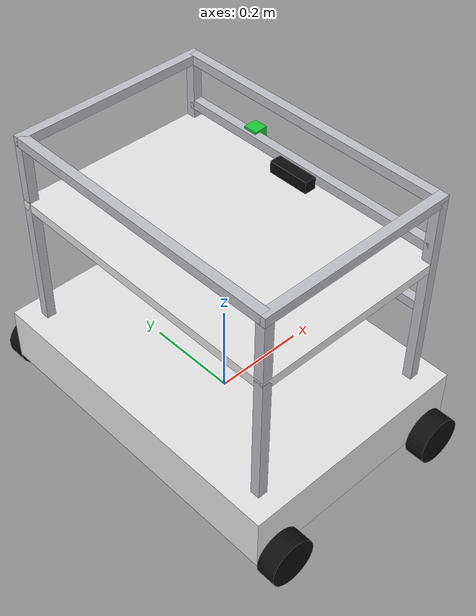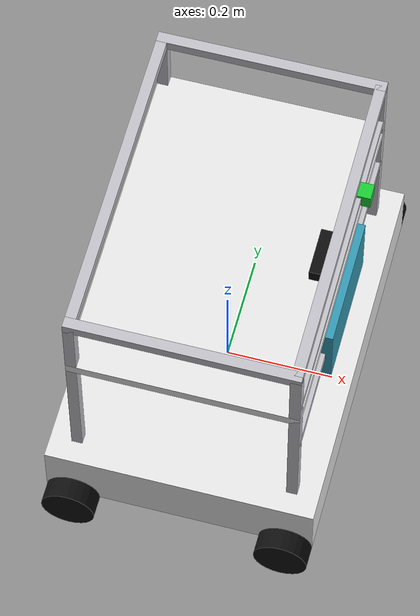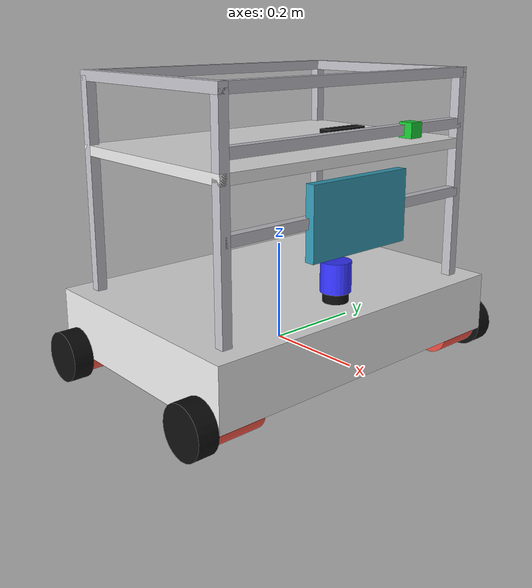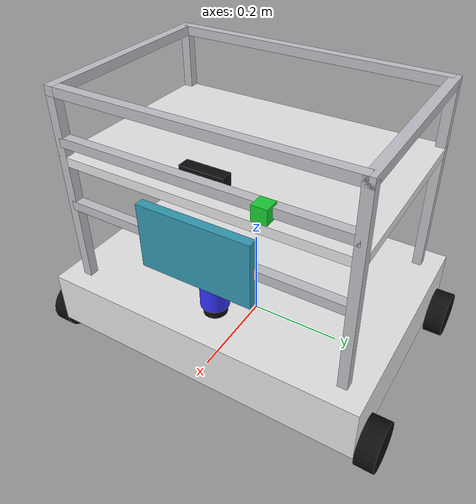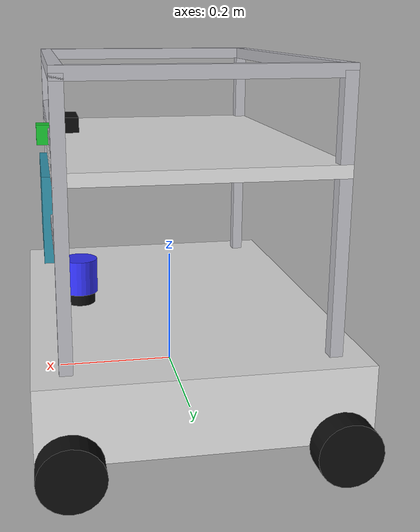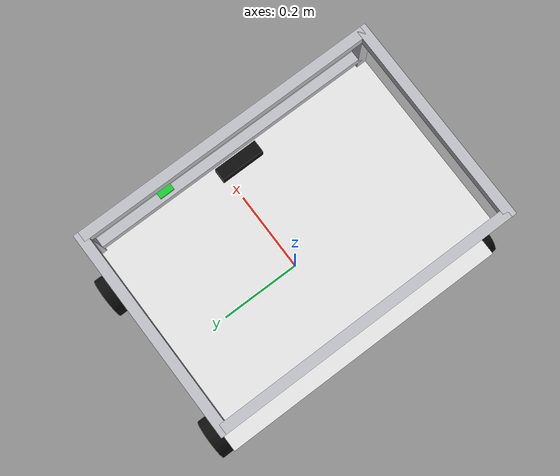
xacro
<?xml version="1.0"?>
<robot name="tribo" xmlns:xacro="http://www.ros.org/wiki/xacro">

    <xacro:include filename="inertial_macros.xacro"/>

    <!--  치수 파라미터 (단위 m)                                        -->
    <!--  주의 - 모두 사진 비율로 추정한 값. 실측 확보 시 여기만 교체.  -->
    <!--  좌표계 - X 전방, Y 좌측, Z 상방                               -->
    <!--  base_link = 바퀴 축 평면(휠 중심 z=0)                         -->

    <!-- 바퀴 -->
    <!-- 100mm 메카넘 공칭 반경. 운동학용 보정 반경(robot_geom.yaml 의 wheel_radius)과 -->
    <!-- 는 성격이 다르다. 여기는 물리 형상이므로 공칭값을 쓴다. -->
    <xacro:property name="wheel_radius" value="0.05"/>
    <xacro:property name="wheel_width"  value="0.04"/>
    <!-- 2026-08-19 실측으로 교체. 기존 0.14/0.25 는 위 주석대로 사진 비율 추정치였고 -->
    <!-- 실측(휠베이스 0.40, 트랙 0.74)과 크게 어긋나 있었다. -->
    <xacro:property name="wheel_x"      value="0.20"/>   <!-- 전후 휠 중심 (휠베이스 0.40 의 절반) -->
    <xacro:property name="wheel_y"      value="0.37"/>   <!-- 좌우 휠 중심 (트랙 0.74 의 절반). 차체 반폭(0.21)보다 16cm 바깥 → 좌우 크게 돌출 -->

    <!--  하단 베이스(구동부 박스)                                       -->
    <!--  전장(X)은 nav2 실측 footprint 그대로. 같은 실측 기하에서       -->
    <!--  유도하며 숫자를 베껴 적지 않는다.                              -->
    <!--    전장 0.50 = 2*(휠베이스/2 + 바퀴반경)  = footprint X 와 동일  -->
    <!--  전폭(Y)은 바퀴 안쪽 면까지만 잡는다. footprint 전폭 0.78 은     -->
    <!--  바퀴 바깥면까지의 값이라 그대로 쓰면 바퀴가 박스에 파묻힌다.    -->
    <!--    전폭 0.70 = 2*(트랙/2 - 바퀴폭/2)                            -->
    <!--  → 바퀴 4개가 박스 밖으로 온전히 드러난다.                      -->
    <!--  로봇 전체 외곽은 여전히 0.50 x 0.78 = nav2 footprint 그대로다. -->
    <xacro:property name="base_x"       value="${2*(wheel_x + wheel_radius)}"/>   <!-- 전장 0.50 -->
    <xacro:property name="base_y"       value="${2*(wheel_y - wheel_width/2)}"/>  <!-- 전폭 0.70 -->
    <xacro:property name="base_h"       value="0.12"/>   <!-- 높이 -->
    <xacro:property name="base_bottom"  value="0.0"/>    <!-- 베이스 박스 바닥 z = 휠 축 높이. 모터/바퀴가 하단에 위치 -->
    <xacro:property name="base_cz"      value="${base_bottom + base_h/2}"/>
    <xacro:property name="deck_z"       value="${base_bottom + base_h}"/>  <!-- 베이스 상판 = 상단 프레임/라이다 기준면 -->

    <!-- 상단 프레임(알루미늄 프로파일 케이지) -->
    <xacro:property name="frame_h"      value="0.42"/>   <!-- 기둥 높이 -->
    <xacro:property name="post_t"       value="0.02"/>   <!-- 프로파일 단면 -->
    <!-- 기둥은 차체 모서리에서 frame_inset 만큼 안쪽에 세운다. 차체가 커지면 -->
    <!-- 프레임 케이지도 같은 비율로 따라 커진다. 0.20 / 0.34 가 나온다. -->
    <xacro:property name="frame_inset"  value="0.04"/>   <!-- 차체 옆면 ~ 기둥 바깥면 -->
    <xacro:property name="post_x"       value="${base_x/2 - frame_inset - post_t/2}"/>  <!-- 기둥 X 위치 -->
    <xacro:property name="post_y"       value="${base_y/2 - frame_inset - post_t/2}"/>  <!-- 기둥 Y 위치 -->
    <xacro:property name="top_z"        value="${deck_z + frame_h}"/>  <!-- 상단 프레임 z -->

    <!-- 모터 - 실제 장착 위치. 바퀴 축(x=±wheel_x) 위에서 바퀴 안쪽 면에 -->
    <!-- 붙어 안쪽(차체 중심 방향)으로 뻗는다. 실물도 모터는 바퀴 안쪽의 -->
    <!-- 차체 내부에 들어가 있고, 축만 바퀴로 나온다. -->
    <!-- 차체가 바퀴 바깥면까지 넓어졌으므로 모터는 차체에 완전히 감싸인다. -->
    <!-- 차체 바닥(z=0) 아래로 나온 아래 절반만 밖에서 보인다. -->
    <xacro:property name="motor_r"      value="0.04"/>
    <xacro:property name="motor_len"    value="0.10"/>                           <!-- 모터 몸통 길이 -->
    <!-- 차체 옆면이 이제 바퀴 안쪽 면과 같은 자리다. 모터 끝면을 거기에 -->
    <!-- 정확히 맞추면 두 면이 동일 평면이 되어 z-fighting 이 난다. -->
    <!-- motor_inset 만큼 안으로 물려 확실히 차체 내부에 두자. -->
    <xacro:property name="motor_inset"  value="0.005"/>
    <xacro:property name="motor_outer"  value="${wheel_y - wheel_width/2 - motor_inset}"/>
    <xacro:property name="motor_cy"     value="${motor_outer - motor_len/2}"/>

    <!-- 센서 장착 위치. 실로봇 TF 라 차체/프레임 모델에 묶지 않는다. -->
    <!-- 프레임 치수는 미실측 추정이라 여기에 연동시키면 실물이 그대로인데도 -->
    <!-- 센서 TF 가 따라 움직인다. 실제로 post_x 에 묶었다가 camera_joint 가 -->
    <!-- 5cm 밀린 적이 있다(2026-08-21). 값은 실측 확보 시에만 바꿀 것. -->
    <xacro:property name="lidar_x"      value="0.16"/>
    <xacro:property name="camera_x"     value="0.17"/>

    <!-- Materials -->
    <material name="white"><color rgba="0.9 0.9 0.9 1"/></material>
    <material name="orange"><color rgba="1 0.3 0.1 1"/></material>
    <material name="blue"><color rgba="0.2 0.2 1 1"/></material>
    <material name="black"><color rgba="0.05 0.05 0.05 1"/></material>
    <material name="red"><color rgba="0.9 0.3 0.25 1"/></material>
    <material name="silver"><color rgba="0.75 0.75 0.78 1"/></material>
    <material name="cyan"><color rgba="0.2 0.6 0.7 1"/></material>
    <material name="green"><color rgba="0.1 0.8 0.2 1"/></material>

    <!--  BASE LINK                                                     -->
    <link name="base_link"/>

    <!--  CHASSIS = 하단 구동 베이스 (박스 + 모터 하우징 비주얼)        -->
    <link name="chassis">
        <!-- 베이스 박스 -->
        <visual>
            <origin xyz="0 0 ${base_cz}"/>
            <geometry><box size="${base_x} ${base_y} ${base_h}"/></geometry>
            <material name="white"/>
        </visual>
        <collision>
            <origin xyz="0 0 ${base_cz}"/>
            <geometry><box size="${base_x} ${base_y} ${base_h}"/></geometry>
        </collision>

        <!-- 모터 하우징 4개 (빨간 원통). 바퀴 축 위, 바퀴 안쪽 면에 직결 -->
        <visual>
            <origin xyz="${wheel_x} ${motor_cy} 0" rpy="${pi/2} 0 0"/>
            <geometry><cylinder radius="${motor_r}" length="${motor_len}"/></geometry>
            <material name="red"/>
        </visual>
        <visual>
            <origin xyz="${wheel_x} ${-motor_cy} 0" rpy="${pi/2} 0 0"/>
            <geometry><cylinder radius="${motor_r}" length="${motor_len}"/></geometry>
            <material name="red"/>
        </visual>
        <visual>
            <origin xyz="${-wheel_x} ${motor_cy} 0" rpy="${pi/2} 0 0"/>
            <geometry><cylinder radius="${motor_r}" length="${motor_len}"/></geometry>
            <material name="red"/>
        </visual>
        <visual>
            <origin xyz="${-wheel_x} ${-motor_cy} 0" rpy="${pi/2} 0 0"/>
            <geometry><cylinder radius="${motor_r}" length="${motor_len}"/></geometry>
            <material name="red"/>
        </visual>

        <!-- 무게 중심을 낮게 두기 위해 베이스에 질량 집중 -->
        <xacro:inertial_box mass="3.0" x="${base_x}" y="${base_y}" z="${base_h}">
            <origin xyz="0 0 ${base_cz}" rpy="0 0 0"/>
        </xacro:inertial_box>
    </link>

    <joint name="chassis_joint" type="fixed">
        <parent link="base_link"/>
        <child link="chassis"/>
        <origin xyz="0 0 0"/>
    </joint>

    <!--  바퀴 4개 (좌측 axis +Z, 우측 axis -Z) — 기존 구조 유지        -->
    <!-- FRONT LEFT -->
    <link name="front_left_wheel">
        <visual>
            <geometry><cylinder radius="${wheel_radius}" length="${wheel_width}"/></geometry>
            <material name="black"/>
        </visual>
        <collision>
            <geometry><cylinder radius="${wheel_radius}" length="${wheel_width}"/></geometry>
        </collision>
        <xacro:inertial_cylinder mass="0.1" length="${wheel_width}" radius="${wheel_radius}">
            <origin xyz="0 0 0" rpy="0 0 0"/>
        </xacro:inertial_cylinder>
    </link>
    <joint name="front_left_wheel_joint" type="continuous">
        <parent link="base_link"/>
        <child  link="front_left_wheel"/>
        <origin xyz="${wheel_x} ${wheel_y} 0" rpy="-${pi/2} 0 0"/>
        <axis xyz="0 0 1"/>
    </joint>

    <!-- FRONT RIGHT -->
    <link name="front_right_wheel">
        <visual>
            <geometry><cylinder radius="${wheel_radius}" length="${wheel_width}"/></geometry>
            <material name="black"/>
        </visual>
        <collision>
            <geometry><cylinder radius="${wheel_radius}" length="${wheel_width}"/></geometry>
        </collision>
        <xacro:inertial_cylinder mass="0.1" length="${wheel_width}" radius="${wheel_radius}">
            <origin xyz="0 0 0" rpy="0 0 0"/>
        </xacro:inertial_cylinder>
    </link>
    <joint name="front_right_wheel_joint" type="continuous">
        <parent link="base_link"/>
        <child  link="front_right_wheel"/>
        <origin xyz="${wheel_x} ${-wheel_y} 0" rpy="${pi/2} 0 0"/>
        <axis xyz="0 0 -1"/>
    </joint>

    <!-- REAR LEFT -->
    <link name="rear_left_wheel">
        <visual>
            <geometry><cylinder radius="${wheel_radius}" length="${wheel_width}"/></geometry>
            <material name="black"/>
        </visual>
        <collision>
            <geometry><cylinder radius="${wheel_radius}" length="${wheel_width}"/></geometry>
        </collision>
        <xacro:inertial_cylinder mass="0.1" length="${wheel_width}" radius="${wheel_radius}">
            <origin xyz="0 0 0" rpy="0 0 0"/>
        </xacro:inertial_cylinder>
    </link>
    <joint name="rear_left_wheel_joint" type="continuous">
        <parent link="base_link"/>
        <child  link="rear_left_wheel"/>
        <origin xyz="${-wheel_x} ${wheel_y} 0" rpy="-${pi/2} 0 0"/>
        <axis xyz="0 0 1"/>
    </joint>

    <!-- REAR RIGHT -->
    <link name="rear_right_wheel">
        <visual>
            <geometry><cylinder radius="${wheel_radius}" length="${wheel_width}"/></geometry>
            <material name="black"/>
        </visual>
        <collision>
            <geometry><cylinder radius="${wheel_radius}" length="${wheel_width}"/></geometry>
        </collision>
        <xacro:inertial_cylinder mass="0.1" length="${wheel_width}" radius="${wheel_radius}">
            <origin xyz="0 0 0" rpy="0 0 0"/>
        </xacro:inertial_cylinder>
    </link>
    <joint name="rear_right_wheel_joint" type="continuous">
        <parent link="base_link"/>
        <child  link="rear_right_wheel"/>
        <origin xyz="${-wheel_x} ${-wheel_y} 0" rpy="${pi/2} 0 0"/>
        <axis xyz="0 0 -1"/>
    </joint>

    <!--  상단 프레임 케이지 (기둥 4 + 상단 레일 4 + 디스플레이 + 버튼) -->
    <!--  단일 fixed 링크로 묶음. 좌표는 base_link 기준.               -->
    <link name="frame">
        <!-- 수직 기둥 4개 -->
        <visual>
            <origin xyz="${post_x} ${post_y} ${deck_z + frame_h/2}"/>
            <geometry><box size="${post_t} ${post_t} ${frame_h}"/></geometry>
            <material name="silver"/>
        </visual>
        <visual>
            <origin xyz="${post_x} ${-post_y} ${deck_z + frame_h/2}"/>
            <geometry><box size="${post_t} ${post_t} ${frame_h}"/></geometry>
            <material name="silver"/>
        </visual>
        <visual>
            <origin xyz="${-post_x} ${post_y} ${deck_z + frame_h/2}"/>
            <geometry><box size="${post_t} ${post_t} ${frame_h}"/></geometry>
            <material name="silver"/>
        </visual>
        <visual>
            <origin xyz="${-post_x} ${-post_y} ${deck_z + frame_h/2}"/>
            <geometry><box size="${post_t} ${post_t} ${frame_h}"/></geometry>
            <material name="silver"/>
        </visual>

        <!-- 상단 레일 X 방향 2개 -->
        <visual>
            <origin xyz="0 ${post_y} ${top_z}"/>
            <geometry><box size="${2*post_x + post_t} ${post_t} ${post_t}"/></geometry>
            <material name="silver"/>
        </visual>
        <visual>
            <origin xyz="0 ${-post_y} ${top_z}"/>
            <geometry><box size="${2*post_x + post_t} ${post_t} ${post_t}"/></geometry>
            <material name="silver"/>
        </visual>
        <!-- 상단 레일 Y 방향 2개 -->
        <visual>
            <origin xyz="${post_x} 0 ${top_z}"/>
            <geometry><box size="${post_t} ${2*post_y} ${post_t}"/></geometry>
            <material name="silver"/>
        </visual>
        <visual>
            <origin xyz="${-post_x} 0 ${top_z}"/>
            <geometry><box size="${post_t} ${2*post_y} ${post_t}"/></geometry>
            <material name="silver"/>
        </visual>

        <!-- 선반 플레이트 (프레임 기둥에 끼워진 중상단 선반. 지붕 아님) -->
        <visual>
            <origin xyz="0 0 ${deck_z + 0.28}"/>
            <geometry><box size="${2*post_x + post_t} ${2*post_y + post_t} 0.02"/></geometry>
            <material name="white"/>
        </visual>
        <collision>
            <origin xyz="0 0 ${deck_z + 0.28}"/>
            <geometry><box size="${2*post_x + post_t} ${2*post_y + post_t} 0.02"/></geometry>
        </collision>

        <!-- 전면 가로 프로파일 2개 (LCD/카메라 장착용) -->
        <visual>
            <origin xyz="${post_x} 0 ${deck_z + 0.18}"/>
            <geometry><box size="${post_t} ${2*post_y} ${post_t}"/></geometry>
            <material name="silver"/>
        </visual>
        <visual>
            <origin xyz="${post_x} 0 ${deck_z + 0.32}"/>
            <geometry><box size="${post_t} ${2*post_y} ${post_t}"/></geometry>
            <material name="silver"/>
        </visual>

        <!-- 디스플레이 (전면 가로바에 부착) -->
        <visual>
            <origin xyz="${post_x + 0.012} 0 ${deck_z + 0.18}"/>
            <geometry><box size="0.02 0.24 0.14"/></geometry>
            <material name="cyan"/>
        </visual>

        <!-- 전원 버튼 (녹색, 가로바에 부착) -->
        <visual>
            <origin xyz="${post_x + 0.012} 0.14 ${deck_z + 0.32}"/>
            <geometry><box size="0.03 0.03 0.03"/></geometry>
            <material name="green"/>
        </visual>

        <!-- 충돌은 기둥만 (프레임 물리 외곽) -->
        <collision>
            <origin xyz="${post_x} ${post_y} ${deck_z + frame_h/2}"/>
            <geometry><box size="${post_t} ${post_t} ${frame_h}"/></geometry>
        </collision>
        <collision>
            <origin xyz="${post_x} ${-post_y} ${deck_z + frame_h/2}"/>
            <geometry><box size="${post_t} ${post_t} ${frame_h}"/></geometry>
        </collision>
        <collision>
            <origin xyz="${-post_x} ${post_y} ${deck_z + frame_h/2}"/>
            <geometry><box size="${post_t} ${post_t} ${frame_h}"/></geometry>
        </collision>
        <collision>
            <origin xyz="${-post_x} ${-post_y} ${deck_z + frame_h/2}"/>
            <geometry><box size="${post_t} ${post_t} ${frame_h}"/></geometry>
        </collision>

        <!-- 프레임 전체 질량 근사 (기둥 + 레일 + 2층 판) -->
        <xacro:inertial_box mass="1.2" x="${2*post_x}" y="${2*post_y}" z="${frame_h}">
            <origin xyz="0 0 ${deck_z + frame_h/2}" rpy="0 0 0"/>
        </xacro:inertial_box>
    </link>

    <joint name="frame_joint" type="fixed">
        <parent link="chassis"/>
        <child  link="frame"/>
        <origin xyz="0 0 0"/>
    </joint>

    <!--  라이다 (하단 상판 전방 중앙)                                  -->
    <link name="lidar_mount">
        <visual>
            <origin xyz="0 0 0.01" rpy="0 0 0"/>
            <geometry><cylinder radius="0.025" length="0.02"/></geometry>
            <material name="black"/>
        </visual>
        <collision>
            <origin xyz="0 0 0.01" rpy="0 0 0"/>
            <geometry><cylinder radius="0.025" length="0.02"/></geometry>
        </collision>
        <inertial>
            <origin xyz="0 0 0.01" rpy="0 0 0"/>
            <mass value="0.05"/>
            <inertia ixx="3.0e-05" ixy="0" ixz="0" iyy="3.0e-05" iyz="0" izz="3.0e-05"/>
        </inertial>
    </link>

    <joint name="lidar_mount_fixed_joint" type="fixed">
        <parent link="chassis"/>
        <child link="lidar_mount"/>
        <!-- 하단 베이스 상판 전방 중앙 -->
        <origin xyz="${lidar_x} 0.0 ${deck_z}" rpy="0 0 0"/>
    </joint>

    <!-- 레이저 링크 (라이다 본체). yaw=π 는 실로봇 거꾸로 마운트 보정값 -->
    <!-- ⚠ 새 마운트 방향은 실로봇에서 재검증 필요 -->
    <link name="laser_link">
        <visual>
            <origin xyz="0 0 0" rpy="0 0 0"/>
            <geometry><cylinder radius="0.03" length="0.06"/></geometry>
            <material name="blue"/>
        </visual>
        <collision>
            <origin xyz="0 0 0" rpy="0 0 0"/>
            <geometry><cylinder radius="0.03" length="0.06"/></geometry>
        </collision>
        <inertial>
            <origin xyz="0 0 0" rpy="0 0 0"/>
            <mass value="0.2"/>
            <inertia ixx="1.2e-04" ixy="0" ixz="0" iyy="1.2e-04" iyz="0" izz="1.6e-04"/>
        </inertial>
    </link>

    <joint name="laser_link_fixed_joint" type="fixed">
        <parent link="lidar_mount"/>
        <child link="laser_link"/>
        <origin xyz="0.0 0.0 0.05" rpy="0 0 ${pi}"/>
    </joint>

    <!--  Depth 카메라 (상단 프레임 전면, 전방 주시)                    -->
    <link name="camera_link">
        <visual>
            <origin xyz="0 0 0" rpy="0 0 0"/>
            <geometry><box size="0.025 0.09 0.025"/></geometry>
            <material name="black"/>
        </visual>
        <collision>
            <origin xyz="0 0 0" rpy="0 0 0"/>
            <geometry><box size="0.025 0.09 0.025"/></geometry>
        </collision>
        <inertial>
            <origin xyz="0 0 0" rpy="0 0 0"/>
            <mass value="0.05"/>
            <inertia ixx="1.0e-05" ixy="0" ixz="0" iyy="1.0e-05" iyz="0" izz="1.0e-05"/>
        </inertial>
    </link>

    <joint name="camera_joint" type="fixed">
        <parent link="frame"/>
        <child link="camera_link"/>
        <!-- 상단 전면 가로 프로파일(z=deck_z+0.32) 높이. 전방(+X) 주시 -->
        <!-- x 는 camera_x 고정값이다. post_x 에 묶으면 프레임 모델을 손댈 때마다 -->
        <!-- 실로봇 TF 가 흔들린다. 프레임 가로바가 이보다 조금 앞에 있어 -->
        <!-- 비주얼상 7mm 정도 떠 보이지만, TF 안정성이 우선이다. -->
        <origin xyz="${camera_x} 0 ${deck_z + 0.32}" rpy="0 0 0"/>
    </joint>

    <!-- 광학 프레임 (ROS optical 규약 - z 전방, x 우측, y 하방) -->
    <link name="camera_link_optical"/>
    <joint name="camera_optical_joint" type="fixed">
        <parent link="camera_link"/>
        <child link="camera_link_optical"/>
        <origin xyz="0 0 0" rpy="${-pi/2} 0 ${-pi/2}"/>
    </joint>

</robot>
